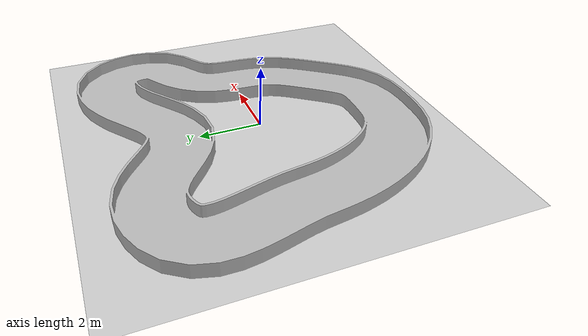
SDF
<sdf version="1.6">
 <world name="default">
  <model name="ground_plane">
   <static>1</static>
   <link name="link">
    <collision name="collision">
     <geometry><plane><normal>0 0 1</normal><size>100 100</size></plane></geometry>
     <surface><friction><ode><mu>100</mu><mu2>50</mu2></ode></friction></surface>
    </collision>
    <visual name="visual">
     <cast_shadows>0</cast_shadows>
     <geometry><plane><normal>0 0 1</normal><size>100 100</size></plane></geometry>
     <material>
      <script><uri>file://media/materials/scripts/gazebo.material</uri><name>Gazebo/Grey</name></script>
     </material>
    </visual>
   </link>
  </model>
  <light name="sun" type="directional">
   <cast_shadows>0</cast_shadows>
   <pose>0 0 10 0 -0 0</pose>
   <diffuse>0.8 0.8 0.8 1</diffuse>
   <specular>0.2 0.2 0.2 1</specular>
   <attenuation>
    <range>1000</range>
    <constant>0.9</constant>
    <linear>0.01</linear>
    <quadratic>0.001</quadratic>
   </attenuation>
   <direction>-0.5 0.1 -0.9</direction>
  </light>
  <gravity>0 0 -9.8</gravity>
  <magnetic_field>6e-06 2.3e-05 -4.2e-05</magnetic_field>
  <atmosphere type="adiabatic"/>
  <physics type="ode">
   <max_step_size>0.001</max_step_size>
   <real_time_factor>1</real_time_factor>
   <real_time_update_rate>1000</real_time_update_rate>
  </physics>
  <scene><ambient>0.4 0.4 0.4 1</ambient><background>0.7 0.7 0.7 1</background><shadows>0</shadows></scene>
  <spherical_coordinates>
   <surface_model>EARTH_WGS84</surface_model>
   <latitude_deg>0</latitude_deg>
   <longitude_deg>0</longitude_deg>
   <elevation>0</elevation>
   <heading_deg>0</heading_deg>
  </spherical_coordinates>
  <include><uri>model://track2</uri><name>track2</name><pose>0 0 0.001 0 0 0</pose></include>
 </world>
</sdf>

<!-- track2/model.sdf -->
<sdf version="1.4">
  <model name="track2">
    <pose>0 0 0 0 0 0</pose>
    <static>true</static>
    <link name="track2">
      <inertial>
        <mass>25.0</mass>
        <pose>0 0.0 0.0 0 0 0</pose>
        <inertia> <!-- inertias are tricky to compute -->
          <!-- http://gazebosim.org/tutorials?tut=inertia&cat=build_robot -->
          <ixx>0.006339</ixx>       <!-- for a box: ixx = 0.083 * mass * (y*y + z*z) -->
          <ixy>0.000015</ixy>         <!-- for a box: ixy = 0 -->
          <ixz>0.000000</ixz>         <!-- for a box: ixz = 0 -->
          <iyy>0.027656</iyy>       <!-- for a box: iyy = 0.083 * mass * (x*x + z*z) -->
          <iyz>0.000134</iyz>         <!-- for a box: iyz = 0 -->
          <izz>0.027655</izz>       <!-- for a box: izz = 0.083 * mass * (x*x + y*y) -->
        </inertia>
      </inertial>
      <collision name="track2_collision">
        <geometry>
          <mesh>
            <uri>model://track2/meshes/track2.dae</uri>
          </mesh>
        </geometry>
      </collision>
      <visual name="track2_visual">
       <pose>0.0 0.0 0.0 0 0 0</pose>
       <geometry>
          <mesh>
            <uri>model://track2/meshes/track2.dae</uri>
          </mesh>
        </geometry>
      </visual>
    </link>
  </model>
</sdf>
